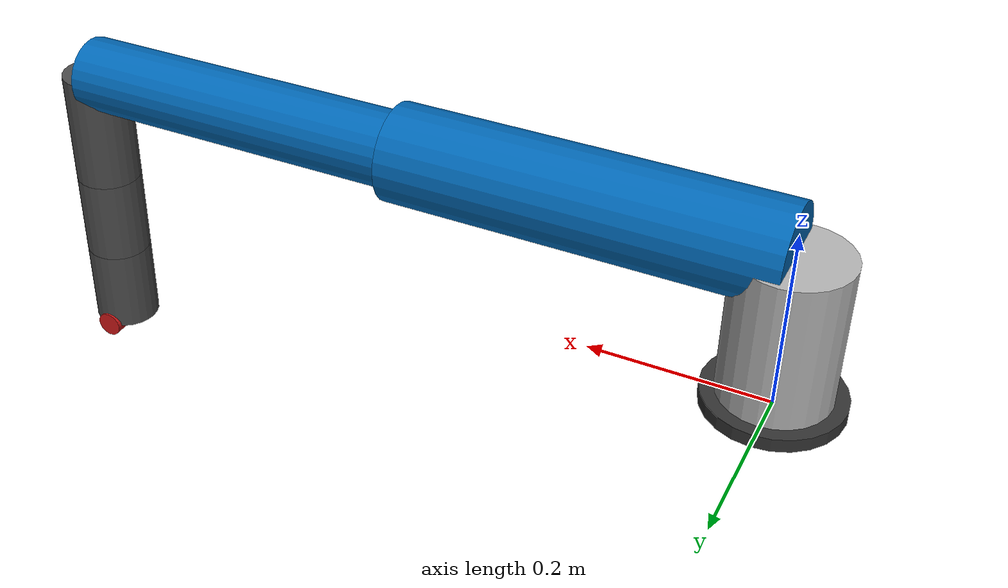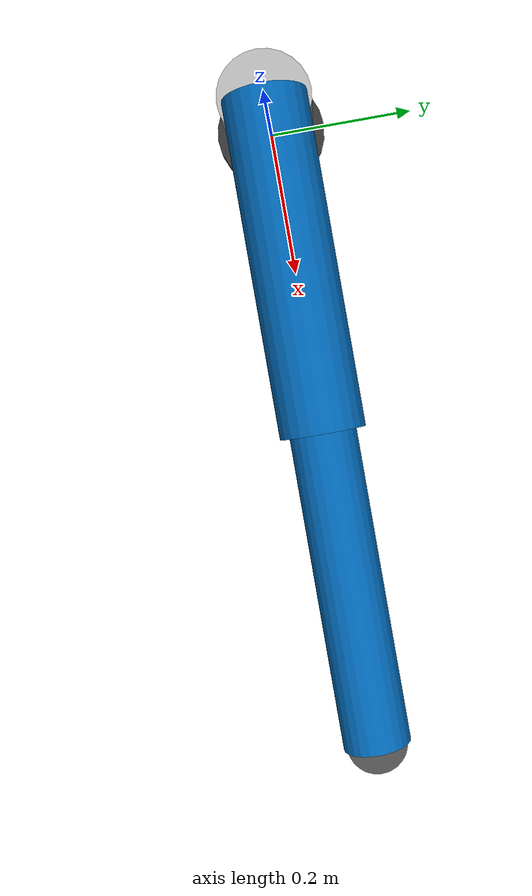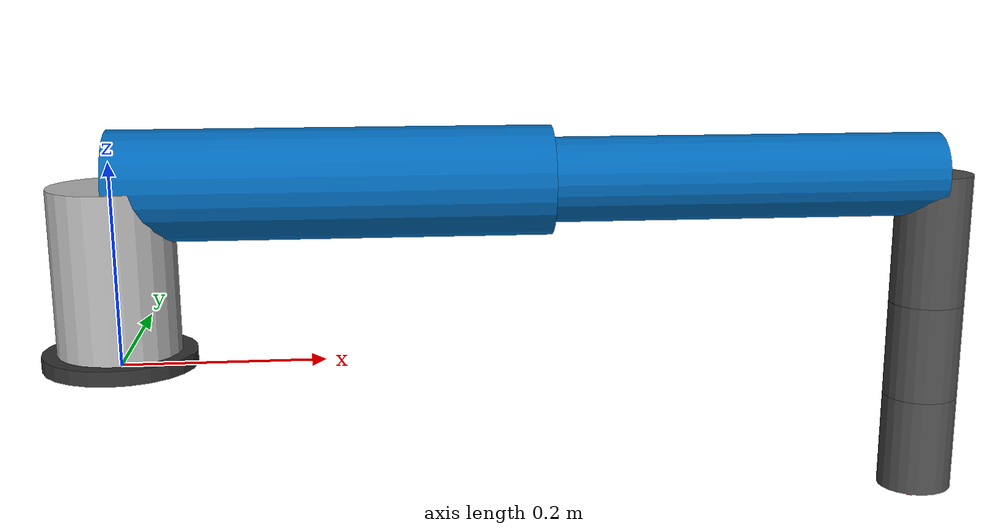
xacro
<?xml version="1.0"?>
<robot xmlns:xacro="http://www.ros.org/wiki/xacro" name="ur5e_magnet">

  <!-- Controllers yaml path (passed from launch file) -->
  <xacro:arg name="controllers_yaml" default=""/>

  <!-- UR5e DH Parameters (standard) -->
  <xacro:property name="d1"  value="0.1625"/>
  <xacro:property name="a2"  value="-0.4250"/>
  <xacro:property name="a3"  value="-0.3922"/>
  <xacro:property name="d4"  value="0.1333"/>
  <xacro:property name="d5"  value="0.0997"/>
  <xacro:property name="d6"  value="0.0996"/>

  <!-- Joint limits -->
  <xacro:property name="effort_limit" value="150.0"/>
  <xacro:property name="velocity_limit" value="3.14"/>

  <!-- Macro for revolute joint -->
  <xacro:macro name="ur_joint" params="name parent child origin_xyz origin_rpy axis lower upper">
    <joint name="${name}" type="revolute">
      <parent link="${parent}"/>
      <child link="${child}"/>
      <origin xyz="${origin_xyz}" rpy="${origin_rpy}"/>
      <axis xyz="${axis}"/>
      <limit lower="${lower}" upper="${upper}" effort="${effort_limit}" velocity="${velocity_limit}"/>
      <dynamics damping="0.5" friction="0.1"/>
    </joint>
  </xacro:macro>

  <!-- Macro for link with cylinder visual -->
  <xacro:macro name="ur_link" params="name length radius mass color_r color_g color_b">
    <link name="${name}">
      <visual>
        <geometry>
          <cylinder length="${length}" radius="${radius}"/>
        </geometry>
        <origin xyz="0 0 ${length/2}" rpy="0 0 0"/>
        <material name="${name}_mat">
          <color rgba="${color_r} ${color_g} ${color_b} 1.0"/>
        </material>
      </visual>
      <collision>
        <geometry>
          <cylinder length="${length}" radius="${radius}"/>
        </geometry>
        <origin xyz="0 0 ${length/2}" rpy="0 0 0"/>
      </collision>
      <inertial>
        <mass value="${mass}"/>
        <origin xyz="0 0 ${length/2}"/>
        <inertia ixx="${mass*(3*radius*radius + length*length)/12}" ixy="0" ixz="0"
                 iyy="${mass*(3*radius*radius + length*length)/12}" iyz="0"
                 izz="${mass*radius*radius/2}"/>
      </inertial>
    </link>
  </xacro:macro>

  <!-- World / base -->
  <link name="world"/>

  <joint name="world_to_base" type="fixed">
    <parent link="world"/>
    <child link="base_link"/>
    <origin xyz="0 0 0" rpy="0 0 0"/>
  </joint>

  <link name="base_link">
    <visual>
      <geometry>
        <cylinder length="0.015" radius="0.075"/>
      </geometry>
      <origin xyz="0 0 0.0075" rpy="0 0 0"/>
      <material name="base_mat">
        <color rgba="0.2 0.2 0.2 1.0"/>
      </material>
    </visual>
    <collision>
      <geometry>
        <cylinder length="0.015" radius="0.075"/>
      </geometry>
      <origin xyz="0 0 0.0075" rpy="0 0 0"/>
    </collision>
    <inertial>
      <mass value="4.0"/>
      <origin xyz="0 0 0.0075"/>
      <inertia ixx="0.006" ixy="0" ixz="0" iyy="0.006" iyz="0" izz="0.011"/>
    </inertial>
  </link>

  <!-- Link 1: Shoulder -->
  <xacro:ur_link name="shoulder_link" length="${d1}" radius="0.060" mass="3.761" color_r="0.7" color_g="0.7" color_b="0.7"/>
  <xacro:ur_joint name="shoulder_pan_joint" parent="base_link" child="shoulder_link"
                  origin_xyz="0 0 0.015" origin_rpy="0 0 0" axis="0 0 1"
                  lower="-6.2832" upper="6.2832"/>

  <!-- Link 2: Upper arm -->
  <link name="upper_arm_link">
    <visual>
      <geometry>
        <cylinder length="${-a2}" radius="0.054"/>
      </geometry>
      <origin xyz="0 0 ${-a2/2}" rpy="0 0 0"/>
      <material name="upper_arm_mat">
        <color rgba="0.0 0.4 0.7 1.0"/>
      </material>
    </visual>
    <collision>
      <geometry>
        <cylinder length="${-a2}" radius="0.054"/>
      </geometry>
      <origin xyz="0 0 ${-a2/2}" rpy="0 0 0"/>
    </collision>
    <inertial>
      <mass value="8.058"/>
      <origin xyz="0 0 ${-a2/2}"/>
      <inertia ixx="0.138" ixy="0" ixz="0" iyy="0.138" iyz="0" izz="0.012"/>
    </inertial>
  </link>
  <xacro:ur_joint name="shoulder_lift_joint" parent="shoulder_link" child="upper_arm_link"
                  origin_xyz="0 0 ${d1}" origin_rpy="0 ${pi/2} 0" axis="0 1 0"
                  lower="-6.2832" upper="6.2832"/>

  <!-- Link 3: Forearm -->
  <link name="forearm_link">
    <visual>
      <geometry>
        <cylinder length="${-a3}" radius="0.042"/>
      </geometry>
      <origin xyz="0 0 ${-a3/2}" rpy="0 0 0"/>
      <material name="forearm_mat">
        <color rgba="0.0 0.4 0.7 1.0"/>
      </material>
    </visual>
    <collision>
      <geometry>
        <cylinder length="${-a3}" radius="0.042"/>
      </geometry>
      <origin xyz="0 0 ${-a3/2}" rpy="0 0 0"/>
    </collision>
    <inertial>
      <mass value="2.846"/>
      <origin xyz="0 0 ${-a3/2}"/>
      <inertia ixx="0.031" ixy="0" ixz="0" iyy="0.031" iyz="0" izz="0.003"/>
    </inertial>
  </link>
  <xacro:ur_joint name="elbow_joint" parent="upper_arm_link" child="forearm_link"
                  origin_xyz="0 0 ${-a2}" origin_rpy="0 0 0" axis="0 1 0"
                  lower="-3.14159" upper="3.14159"/>

  <!-- Link 4: Wrist 1 -->
  <xacro:ur_link name="wrist_1_link" length="${d4}" radius="0.038" mass="1.37" color_r="0.3" color_g="0.3" color_b="0.3"/>
  <xacro:ur_joint name="wrist_1_joint" parent="forearm_link" child="wrist_1_link"
                  origin_xyz="0 0 ${-a3}" origin_rpy="0 ${pi/2} 0" axis="0 1 0"
                  lower="-6.2832" upper="6.2832"/>

  <!-- Link 5: Wrist 2 -->
  <xacro:ur_link name="wrist_2_link" length="${d5}" radius="0.038" mass="1.30" color_r="0.3" color_g="0.3" color_b="0.3"/>
  <xacro:ur_joint name="wrist_2_joint" parent="wrist_1_link" child="wrist_2_link"
                  origin_xyz="0 0 ${d4}" origin_rpy="0 0 0" axis="0 0 1"
                  lower="-6.2832" upper="6.2832"/>

  <!-- Link 6: Wrist 3 -->
  <xacro:ur_link name="wrist_3_link" length="${d6}" radius="0.038" mass="0.365" color_r="0.3" color_g="0.3" color_b="0.3"/>
  <xacro:ur_joint name="wrist_3_joint" parent="wrist_2_link" child="wrist_3_link"
                  origin_xyz="0 0 ${d5}" origin_rpy="0 0 0" axis="0 1 0"
                  lower="-6.2832" upper="6.2832"/>

  <!-- Tool0 (TCP) frame -->
  <link name="tool0"/>
  <joint name="wrist_3_to_tool0" type="fixed">
    <parent link="wrist_3_link"/>
    <child link="tool0"/>
    <origin xyz="0 0 ${d6}" rpy="${-pi/2} 0 0"/>
  </joint>

  <!-- Permanent magnet attached to tool0 -->
  <link name="magnet_link">
    <visual>
      <geometry>
        <cylinder length="0.04" radius="0.015"/>
      </geometry>
      <origin xyz="0 0 0.02" rpy="0 0 0"/>
      <material name="magnet_mat">
        <color rgba="0.8 0.1 0.1 1.0"/>
      </material>
    </visual>
    <collision>
      <geometry>
        <cylinder length="0.04" radius="0.015"/>
      </geometry>
      <origin xyz="0 0 0.02" rpy="0 0 0"/>
    </collision>
    <inertial>
      <mass value="0.2"/>
      <origin xyz="0 0 0.02"/>
      <inertia ixx="0.00004" ixy="0" ixz="0" iyy="0.00004" iyz="0" izz="0.00002"/>
    </inertial>
  </link>
  <joint name="tool0_to_magnet" type="fixed">
    <parent link="tool0"/>
    <child link="magnet_link"/>
    <origin xyz="0 0 0" rpy="0 0 0"/>
  </joint>

  <!-- Gazebo ros2_control plugin -->
  <ros2_control name="ur5e_magnet_system" type="system">
    <hardware>
      <plugin>gazebo_ros2_control/GazeboSystem</plugin>
    </hardware>
    <joint name="shoulder_pan_joint">
      <command_interface name="position"><param name="min">-6.2832</param><param name="max">6.2832</param></command_interface>
      <state_interface name="position"/><state_interface name="velocity"/>
    </joint>
    <joint name="shoulder_lift_joint">
      <command_interface name="position"><param name="min">-6.2832</param><param name="max">6.2832</param></command_interface>
      <state_interface name="position"/><state_interface name="velocity"/>
    </joint>
    <joint name="elbow_joint">
      <command_interface name="position"><param name="min">-3.14159</param><param name="max">3.14159</param></command_interface>
      <state_interface name="position"/><state_interface name="velocity"/>
    </joint>
    <joint name="wrist_1_joint">
      <command_interface name="position"><param name="min">-6.2832</param><param name="max">6.2832</param></command_interface>
      <state_interface name="position"/><state_interface name="velocity"/>
    </joint>
    <joint name="wrist_2_joint">
      <command_interface name="position"><param name="min">-6.2832</param><param name="max">6.2832</param></command_interface>
      <state_interface name="position"/><state_interface name="velocity"/>
    </joint>
    <joint name="wrist_3_joint">
      <command_interface name="position"><param name="min">-6.2832</param><param name="max">6.2832</param></command_interface>
      <state_interface name="position"/><state_interface name="velocity"/>
    </joint>
  </ros2_control>

  <gazebo>
    <plugin filename="libgazebo_ros2_control.so" name="gazebo_ros2_control">
      <robot_param>robot_description</robot_param>
      <robot_param_node>robot_state_publisher</robot_param_node>
      <parameters>$(arg controllers_yaml)</parameters>
    </plugin>
  </gazebo>

</robot>
